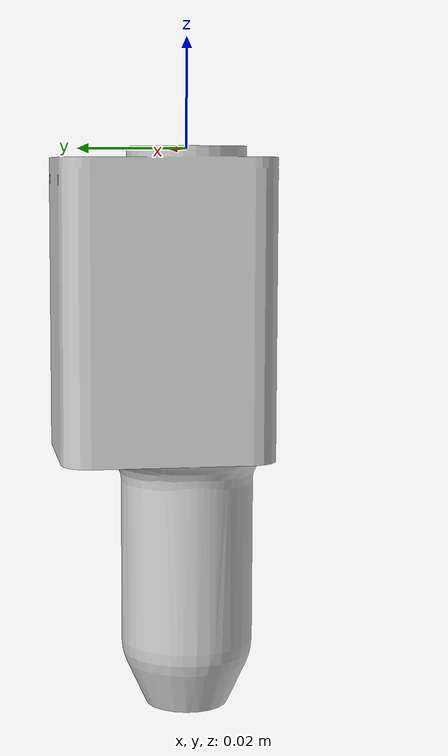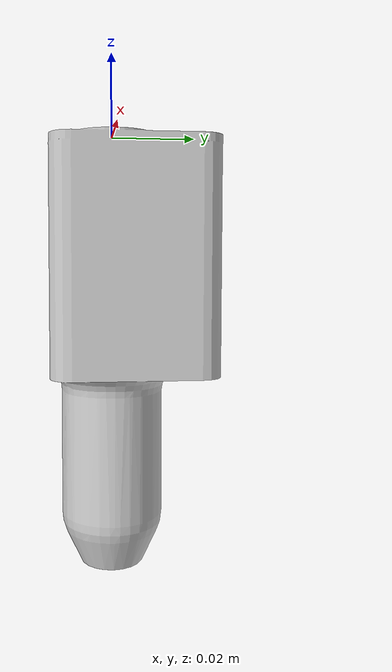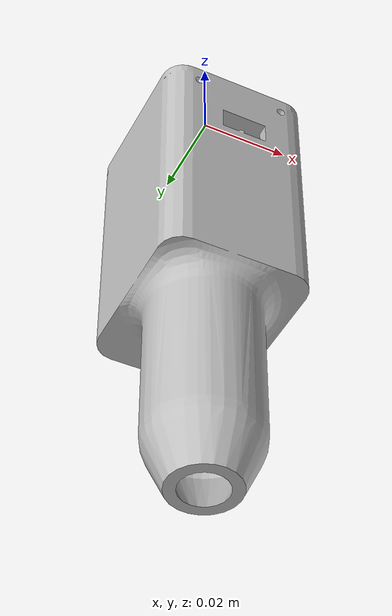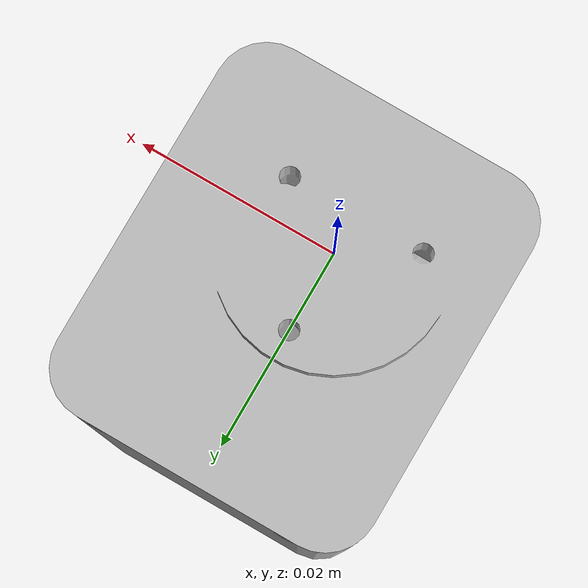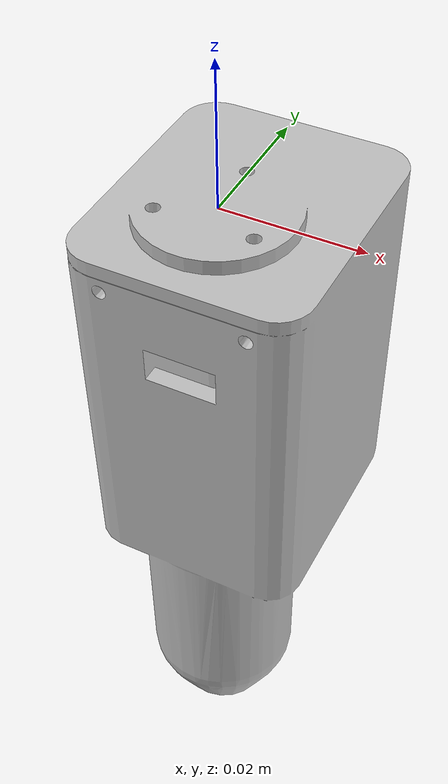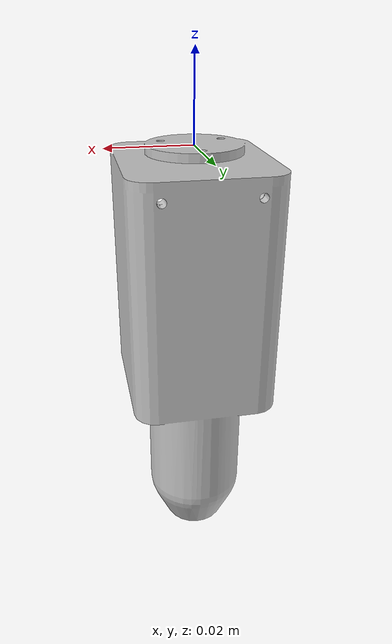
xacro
<?xml version="1.0"?>
<robot xmlns:xacro="http://www.ros.org/wiki/xacro">
  <link
    name="link6">
    <inertial>
      <origin
        xyz="0.000815808907484096 0.00352881488790058 -0.0400897845912586"
        rpy="0 0 0" />
      <mass
        value="0.0309810192340747" />
      <inertia
        ixx="2.32968297412209E-05"
        ixy="-4.95885510616528E-08"
        ixz="-4.3769441939E-07"
        iyy="2.21697403204554E-05"
        iyz="-1.2687019392903E-06"
        izz="8.58719009574823E-06" />
    </inertial>
    <visual>
      <origin
        xyz="0 0 0"
        rpy="0 0 0" />
      <geometry>
        <mesh
          filename="package://dummy_description/meshes/effector/smoke/link6.STL" />
      </geometry>
      <material
        name="">
        <color
          rgba="0.752941176470588 0.752941176470588 0.752941176470588 1" />
      </material>
    </visual>
    <collision>
      <origin
        xyz="0 0 0"
        rpy="0 0 0" />
      <geometry>
        <mesh
          filename="package://dummy_description/meshes/effector/smoke/link6.STL" />
      </geometry>
    </collision>
  </link>

  <link name="tool0">
    <inertial>
      <origin xyz="0 0 0" rpy="0 0 0"/>
      <mass value="0.1"/>
      <inertia ixx="0.0001" ixy="0" ixz="0" iyy="0.0001" iyz="0" izz="0.0001"/>
    </inertial>
  </link>
  <joint name="tool_joint" type="fixed">
    <parent link="link6"/>
    <child link="tool0"/>
    <origin xyz="0 0 0" rpy="1.57 1.57 0"/>
  </joint>
</robot>
